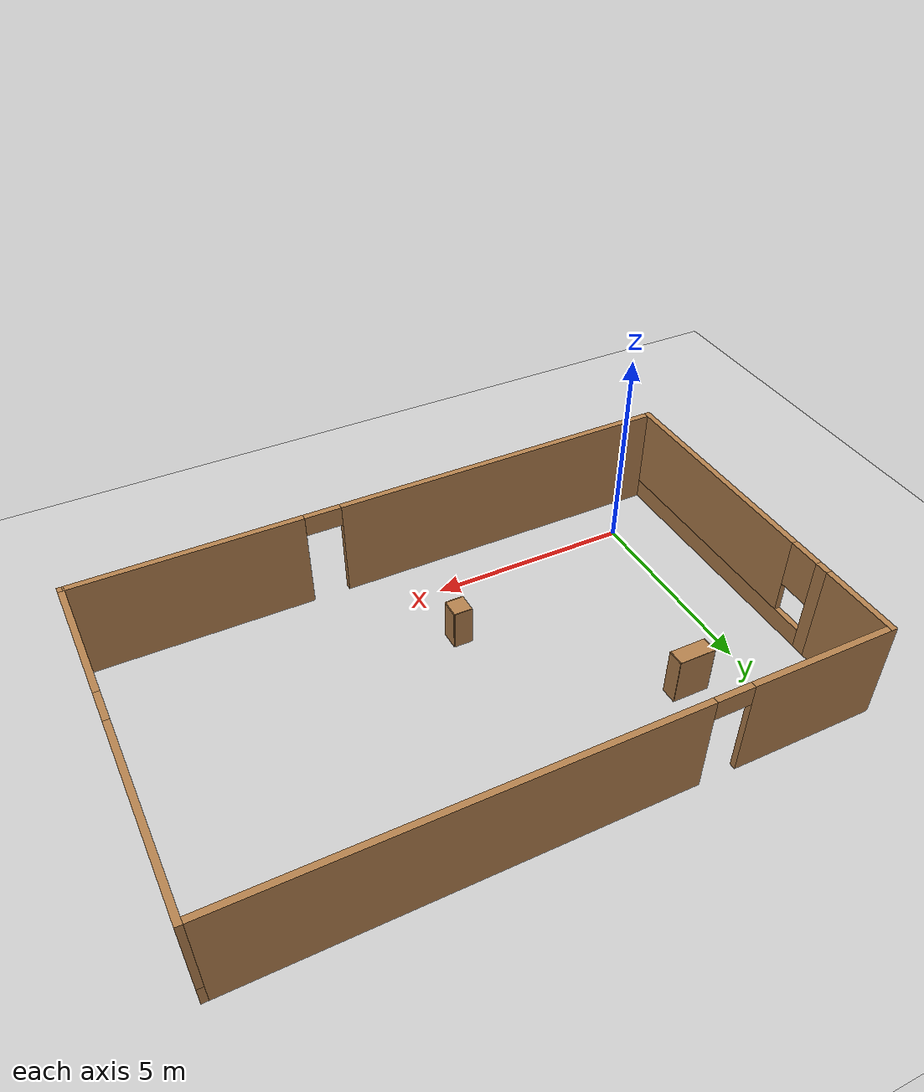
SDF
<sdf version="1.7">
 <world name="default">
  <light name="sun" type="directional">
   <pose>0 0 10 0 -0 0</pose>
   <diffuse>0.8 0.8 0.8 1</diffuse>
   <specular>0.2 0.2 0.2 1</specular>
   <attenuation>
    <range>1000</range>
    <constant>0.9</constant>
    <linear>0.01</linear>
    <quadratic>0.001</quadratic>
   </attenuation>
   <direction>-0.5 0.1 -0.9</direction>
   <spot><inner_angle>0</inner_angle><outer_angle>0</outer_angle><falloff>0</falloff></spot>
  </light>
  <model name="ground_plane">
   <static>1</static>
   <link name="link">
    <collision name="collision">
     <geometry><plane><normal>0 0 1</normal><size>100 100</size></plane></geometry>
     <surface>
      <contact><collide_bitmask>65535</collide_bitmask></contact>
      <friction><ode><mu>100</mu><mu2>50</mu2></ode></friction>
     </surface>
    </collision>
    <visual name="visual">
     <cast_shadows>0</cast_shadows>
     <geometry><plane><normal>0 0 1</normal><size>100 100</size></plane></geometry>
     <material>
      <script><uri>file://media/materials/scripts/gazebo.material</uri><name>Gazebo/Grey</name></script>
     </material>
    </visual>
   </link>
  </model>
  <gravity>0 0 -9.8</gravity>
  <magnetic_field>6e-06 2.3e-05 -4.2e-05</magnetic_field>
  <atmosphere type="adiabatic"/>
  <physics type="ode">
   <max_step_size>0.001</max_step_size>
   <real_time_factor>1</real_time_factor>
   <real_time_update_rate>1000</real_time_update_rate>
  </physics>
  <scene><ambient>0.4 0.4 0.4 1</ambient><background>0.7 0.7 0.7 1</background><shadows>1</shadows></scene>
  <audio><device>default</device></audio>
  <spherical_coordinates>
   <surface_model>EARTH_WGS84</surface_model>
   <latitude_deg>0</latitude_deg>
   <longitude_deg>0</longitude_deg>
   <elevation>0</elevation>
   <heading_deg>0</heading_deg>
  </spherical_coordinates>
  <model name="test">
   <pose>5.89078 3.25868 0 0 -0 0</pose>
   <link name="Wall_4">
    <pose>-7.425 -1 0 0 -0 -1.5708</pose>
    <visual name="Wall_4_Visual_0">
     <pose>-3.33142 0 1.25 0 -0 0</pose>
     <geometry><box><size>0.337166 0.15 2.5</size></box></geometry>
     <material>
      <script><uri>file://media/materials/scripts/gazebo.material</uri><name>Gazebo/Wood</name></script>
      <ambient>1 1 1 1</ambient>
     </material>
     <meta><layer>0</layer></meta>
    </visual>
    <collision name="Wall_4_Collision_0">
     <geometry><box><size>0.337166 0.15 2.5</size></box></geometry>
     <pose>-3.33142 0 1.25 0 -0 0</pose>
    </collision>
    <visual name="Wall_4_Visual_1">
     <pose>0.168583 0 0.25 0 -0 0</pose>
     <geometry><box><size>6.66283 0.15 0.5</size></box></geometry>
     <material>
      <script><uri>file://media/materials/scripts/gazebo.material</uri><name>Gazebo/Wood</name></script>
      <ambient>1 1 1 1</ambient>
     </material>
     <meta><layer>0</layer></meta>
    </visual>
    <collision name="Wall_4_Collision_1">
     <geometry><box><size>6.66283 0.15 0.5</size></box></geometry>
     <pose>0.168583 0 0.25 0 -0 0</pose>
    </collision>
    <visual name="Wall_4_Visual_2">
     <pose>0.568583 0 1.5 0 -0 0</pose>
     <geometry><box><size>5.86283 0.15 2</size></box></geometry>
     <material>
      <script><uri>file://media/materials/scripts/gazebo.material</uri><name>Gazebo/Wood</name></script>
      <ambient>1 1 1 1</ambient>
     </material>
     <meta><layer>0</layer></meta>
    </visual>
    <collision name="Wall_4_Collision_2">
     <geometry><box><size>5.86283 0.15 2</size></box></geometry>
     <pose>0.568583 0 1.5 0 -0 0</pose>
    </collision>
    <visual name="Wall_4_Visual_3">
     <pose>-2.76283 0 1.9 0 -0 0</pose>
     <geometry><box><size>0.8 0.15 1.2</size></box></geometry>
     <material>
      <script><uri>file://media/materials/scripts/gazebo.material</uri><name>Gazebo/Wood</name></script>
      <ambient>1 1 1 1</ambient>
     </material>
     <meta><layer>0</layer></meta>
    </visual>
    <collision name="Wall_4_Collision_3">
     <geometry><box><size>0.8 0.15 1.2</size></box></geometry>
     <pose>-2.76283 0 1.9 0 -0 0</pose>
    </collision>
   </link>
   <link name="Wall_5">
    <pose>-0 -4.425 0 0 -0 0</pose>
    <visual name="Wall_5_Visual_0">
     <pose>-3.21573 0 1.25 0 -0 0</pose>
     <geometry><box><size>8.56854 0.15 2.5</size></box></geometry>
     <material>
      <script><uri>file://media/materials/scripts/gazebo.material</uri><name>Gazebo/Wood</name></script>
      <ambient>1 1 1 1</ambient>
     </material>
     <meta><layer>0</layer></meta>
    </visual>
    <collision name="Wall_5_Collision_0">
     <geometry><box><size>8.56854 0.15 2.5</size></box></geometry>
     <pose>-3.21573 0 1.25 0 -0 0</pose>
    </collision>
    <visual name="Wall_5_Visual_1">
     <pose>4.73427 0 1.25 0 -0 0</pose>
     <geometry><box><size>5.53146 0.15 2.5</size></box></geometry>
     <material>
      <script><uri>file://media/materials/scripts/gazebo.material</uri><name>Gazebo/Wood</name></script>
      <ambient>1 1 1 1</ambient>
     </material>
     <meta><layer>0</layer></meta>
    </visual>
    <collision name="Wall_5_Collision_1">
     <geometry><box><size>5.53146 0.15 2.5</size></box></geometry>
     <pose>4.73427 0 1.25 0 -0 0</pose>
    </collision>
    <visual name="Wall_5_Visual_2">
     <pose>1.51853 0 2.25 0 -0 0</pose>
     <geometry><box><size>0.9 0.15 0.5</size></box></geometry>
     <material>
      <script><uri>file://media/materials/scripts/gazebo.material</uri><name>Gazebo/Wood</name></script>
      <ambient>1 1 1 1</ambient>
     </material>
     <meta><layer>0</layer></meta>
    </visual>
    <collision name="Wall_5_Collision_2">
     <geometry><box><size>0.9 0.15 0.5</size></box></geometry>
     <pose>1.51853 0 2.25 0 -0 0</pose>
    </collision>
   </link>
   <link name="Wall_6">
    <pose>7.425 0 0 0 -0 1.5708</pose>
    <visual name="Wall_6_Visual_0">
     <pose>-2.81562 0 1.25 0 -0 0</pose>
     <geometry><box><size>3.36875 0.15 2.5</size></box></geometry>
     <material>
      <script><uri>file://media/materials/scripts/gazebo.material</uri><name>Gazebo/Wood</name></script>
      <ambient>1 1 1 1</ambient>
     </material>
     <meta><layer>0</layer></meta>
    </visual>
    <collision name="Wall_6_Collision_0">
     <geometry><box><size>3.36875 0.15 2.5</size></box></geometry>
     <pose>-2.81562 0 1.25 0 -0 0</pose>
    </collision>
    <visual name="Wall_6_Visual_1">
     <pose>1.68438 0 0.25 0 -0 0</pose>
     <geometry><box><size>5.63125 0.15 0.5</size></box></geometry>
     <material>
      <script><uri>file://media/materials/scripts/gazebo.material</uri><name>Gazebo/Wood</name></script>
      <ambient>1 1 1 1</ambient>
     </material>
     <meta><layer>0</layer></meta>
    </visual>
    <collision name="Wall_6_Collision_1">
     <geometry><box><size>5.63125 0.15 0.5</size></box></geometry>
     <pose>1.68438 0 0.25 0 -0 0</pose>
    </collision>
    <visual name="Wall_6_Visual_2">
     <pose>2.08438 0 1.5 0 -0 0</pose>
     <geometry><box><size>4.83125 0.15 2</size></box></geometry>
     <material>
      <script><uri>file://media/materials/scripts/gazebo.material</uri><name>Gazebo/Wood</name></script>
      <ambient>1 1 1 1</ambient>
     </material>
     <meta><layer>0</layer></meta>
    </visual>
    <collision name="Wall_6_Collision_2">
     <geometry><box><size>4.83125 0.15 2</size></box></geometry>
     <pose>2.08438 0 1.5 0 -0 0</pose>
    </collision>
    <visual name="Wall_6_Visual_3">
     <pose>-0.731249 0 1.9 0 -0 0</pose>
     <geometry><box><size>0.8 0.15 1.2</size></box></geometry>
     <material>
      <script><uri>file://media/materials/scripts/gazebo.material</uri><name>Gazebo/Wood</name></script>
      <ambient>1 1 1 1</ambient>
     </material>
     <meta><layer>0</layer></meta>
    </visual>
    <collision name="Wall_6_Collision_3">
     <geometry><box><size>0.8 0.15 1.2</size></box></geometry>
     <pose>-0.731249 0 1.9 0 -0 0</pose>
    </collision>
   </link>
   <link name="Wall_7">
    <pose>-0 4.425 0 0 -0 3.14159</pose>
    <visual name="Wall_7_Visual_0">
     <pose>-2.24018 0 1.25 0 -0 0</pose>
     <geometry><box><size>10.5196 0.15 2.5</size></box></geometry>
     <material>
      <script><uri>file://media/materials/scripts/gazebo.material</uri><name>Gazebo/Wood</name></script>
      <ambient>1 1 1 1</ambient>
     </material>
     <meta><layer>0</layer></meta>
    </visual>
    <collision name="Wall_7_Collision_0">
     <geometry><box><size>10.5196 0.15 2.5</size></box></geometry>
     <pose>-2.24018 0 1.25 0 -0 0</pose>
    </collision>
    <visual name="Wall_7_Visual_1">
     <pose>5.70981 0 1.25 0 -0 0</pose>
     <geometry><box><size>3.58037 0.15 2.5</size></box></geometry>
     <material>
      <script><uri>file://media/materials/scripts/gazebo.material</uri><name>Gazebo/Wood</name></script>
      <ambient>1 1 1 1</ambient>
     </material>
     <meta><layer>0</layer></meta>
    </visual>
    <collision name="Wall_7_Collision_1">
     <geometry><box><size>3.58037 0.15 2.5</size></box></geometry>
     <pose>5.70981 0 1.25 0 -0 0</pose>
    </collision>
    <visual name="Wall_7_Visual_2">
     <pose>3.46963 0 2.25 0 -0 0</pose>
     <geometry><box><size>0.9 0.15 0.5</size></box></geometry>
     <material>
      <script><uri>file://media/materials/scripts/gazebo.material</uri><name>Gazebo/Wood</name></script>
      <ambient>1 1 1 1</ambient>
     </material>
     <meta><layer>0</layer></meta>
    </visual>
    <collision name="Wall_7_Collision_2">
     <geometry><box><size>0.9 0.15 0.5</size></box></geometry>
     <pose>3.46963 0 2.25 0 -0 0</pose>
    </collision>
   </link>
   <link name="Wall_8">
    <collision name="Wall_8_Collision">
     <geometry><box><size>2.15 0.15 2.5</size></box></geometry>
     <pose>0 0 1.25 0 -0 0</pose>
    </collision>
    <visual name="Wall_8_Visual">
     <pose>0 0 1.25 0 -0 0</pose>
     <geometry><box><size>2.15 0.15 2.5</size></box></geometry>
     <material>
      <script><uri>file://media/materials/scripts/gazebo.material</uri><name>Gazebo/Wood</name></script>
      <ambient>1 1 1 1</ambient>
     </material>
     <meta><layer>0</layer></meta>
    </visual>
    <pose>-7.425 3.425 0 0 -0 -1.5708</pose>
   </link>
   <static>1</static>
  </model>
  <model name="bookshelf">
   <static>1</static>
   <link name="link">
    <inertial><mass>1</mass></inertial>
    <collision name="back">
     <pose>0 0.005 0.6 0 -0 0</pose>
     <geometry><box><size>0.9 0.01 1.2</size></box></geometry>
    </collision>
    <visual name="visual1">
     <pose>0 0.005 0.6 0 -0 0</pose>
     <geometry><box><size>0.9 0.01 1.2</size></box></geometry>
     <material>
      <script><uri>file://media/materials/scripts/gazebo.material</uri><name>Gazebo/Wood</name></script>
     </material>
    </visual>
    <collision name="left_side">
     <pose>0.45 -0.195 0.6 0 -0 0</pose>
     <geometry><box><size>0.02 0.4 1.2</size></box></geometry>
    </collision>
    <visual name="visual2">
     <pose>0.45 -0.195 0.6 0 -0 0</pose>
     <geometry><box><size>0.02 0.4 1.2</size></box></geometry>
     <material>
      <script><uri>file://media/materials/scripts/gazebo.material</uri><name>Gazebo/Wood</name></script>
     </material>
    </visual>
    <collision name="right_side">
     <pose>-0.45 -0.195 0.6 0 -0 0</pose>
     <geometry><box><size>0.02 0.4 1.2</size></box></geometry>
    </collision>
    <visual name="visual3">
     <pose>-0.45 -0.195 0.6 0 -0 0</pose>
     <geometry><box><size>0.02 0.4 1.2</size></box></geometry>
     <material>
      <script><uri>file://media/materials/scripts/gazebo.material</uri><name>Gazebo/Wood</name></script>
     </material>
    </visual>
    <collision name="bottom">
     <pose>0 -0.195 0.03 0 -0 0</pose>
     <geometry><box><size>0.88 0.4 0.06</size></box></geometry>
    </collision>
    <visual name="visual4">
     <pose>0 -0.195 0.03 0 -0 0</pose>
     <geometry><box><size>0.88 0.4 0.06</size></box></geometry>
     <material>
      <script><uri>file://media/materials/scripts/gazebo.material</uri><name>Gazebo/Wood</name></script>
     </material>
    </visual>
    <collision name="top">
     <pose>0 -0.195 1.19 0 -0 0</pose>
     <geometry><box><size>0.88 0.4 0.02</size></box></geometry>
    </collision>
    <visual name="visual5">
     <pose>0 -0.195 1.19 0 -0 0</pose>
     <geometry><box><size>0.88 0.4 0.02</size></box></geometry>
     <material>
      <script><uri>file://media/materials/scripts/gazebo.material</uri><name>Gazebo/Wood</name></script>
     </material>
    </visual>
    <collision name="low_shelf">
     <pose>0 -0.195 0.43 0 -0 0</pose>
     <geometry><box><size>0.88 0.4 0.02</size></box></geometry>
    </collision>
    <visual name="visual6">
     <pose>0 -0.195 0.43 0 -0 0</pose>
     <geometry><box><size>0.88 0.4 0.02</size></box></geometry>
     <material>
      <script><uri>file://media/materials/scripts/gazebo.material</uri><name>Gazebo/Wood</name></script>
     </material>
    </visual>
    <collision name="high_shelf">
     <pose>0 -0.195 0.8 0 -0 0</pose>
     <geometry><box><size>0.88 0.4 0.02</size></box></geometry>
    </collision>
    <visual name="visual7">
     <pose>0 -0.195 0.8 0 -0 0</pose>
     <geometry><box><size>0.88 0.4 0.02</size></box></geometry>
     <material>
      <script><uri>file://media/materials/scripts/gazebo.material</uri><name>Gazebo/Wood</name></script>
     </material>
    </visual>
   </link>
   <pose>1.55753 5.61672 0 0 -0 0</pose>
  </model>
  <model name="cabinet">
   <static>1</static>
   <link name="cabinet_bottom_plate">
    <inertial>
     <pose>0 0 -1 0 -0 0</pose>
     <inertia><ixx>2.05</ixx><ixy>0</ixy><ixz>0</ixz><iyy>2.05</iyy><iyz>0</iyz><izz>2.05</izz></inertia>
     <mass>25</mass>
    </inertial>
    <collision name="cabinet_bottom_plate_geom">
     <pose>0 0 0.01 0 -0 0</pose>
     <geometry><box><size>0.45 0.45 0.02</size></box></geometry>
    </collision>
    <visual name="cabinet_bottom_plate_geom_visual">
     <pose>0 0 0.01 0 -0 0</pose>
     <geometry><box><size>0.45 0.45 0.02</size></box></geometry>
     <material>
      <script><uri>file://media/materials/scripts/gazebo.material</uri><name>Gazebo/Wood</name></script>
     </material>
    </visual>
    <collision name="cabinet_bottom_plate_geom_cabinet_back_plate">
     <pose>0.235 0 0.51 0 -0 0</pose>
     <geometry><box><size>0.02 0.45 1.02</size></box></geometry>
    </collision>
    <visual name="cabinet_bottom_plate_geom_cabinet_back_plate_visual">
     <pose>0.235 0 0.51 0 -0 0</pose>
     <geometry><box><size>0.02 0.45 1.02</size></box></geometry>
     <material>
      <script><uri>file://media/materials/scripts/gazebo.material</uri><name>Gazebo/Wood</name></script>
     </material>
    </visual>
    <collision name="cabinet_bottom_plate_geom_cabinet_left_plate">
     <pose>0 0.235 0.51 0 -0 0</pose>
     <geometry><box><size>0.45 0.02 1.02</size></box></geometry>
    </collision>
    <visual name="cabinet_bottom_plate_geom_cabinet_left_plate_visual">
     <pose>0 0.235 0.51 0 -0 0</pose>
     <geometry><box><size>0.45 0.02 1.02</size></box></geometry>
     <material>
      <script><uri>file://media/materials/scripts/gazebo.material</uri><name>Gazebo/Wood</name></script>
     </material>
    </visual>
    <collision name="cabinet_bottom_plate_geom_cabinet_middle_plate">
     <pose>0 0 0.51 0 -0 0</pose>
     <geometry><box><size>0.45 0.45 0.02</size></box></geometry>
    </collision>
    <visual name="cabinet_bottom_plate_geom_cabinet_middle_plate_visual">
     <pose>0 0 0.51 0 -0 0</pose>
     <geometry><box><size>0.45 0.45 0.02</size></box></geometry>
     <material>
      <script><uri>file://media/materials/scripts/gazebo.material</uri><name>Gazebo/Wood</name></script>
     </material>
    </visual>
    <collision name="cabinet_bottom_plate_geom_cabinet_right_plate">
     <pose>0 -0.235 0.51 0 -0 0</pose>
     <geometry><box><size>0.45 0.02 1.02</size></box></geometry>
    </collision>
    <visual name="cabinet_bottom_plate_geom_cabinet_right_plate_visual">
     <pose>0 -0.235 0.51 0 -0 0</pose>
     <geometry><box><size>0.45 0.02 1.02</size></box></geometry>
     <material>
      <script><uri>file://media/materials/scripts/gazebo.material</uri><name>Gazebo/Wood</name></script>
     </material>
    </visual>
    <collision name="cabinet_bottom_plate_geom_cabinet_top_plate">
     <pose>0 0 1.01 0 -0 0</pose>
     <geometry><box><size>0.45 0.45 0.02</size></box></geometry>
    </collision>
    <visual name="cabinet_bottom_plate_geom_cabinet_top_plate_visual">
     <pose>0 0 1.01 0 -0 0</pose>
     <geometry><box><size>0.45 0.45 0.02</size></box></geometry>
     <material>
      <script><uri>file://media/materials/scripts/gazebo.material</uri><name>Gazebo/Wood</name></script>
     </material>
    </visual>
   </link>
   <pose>5.32623 1.66073 0 0 -0 0</pose>
  </model>
 </world>
</sdf>
